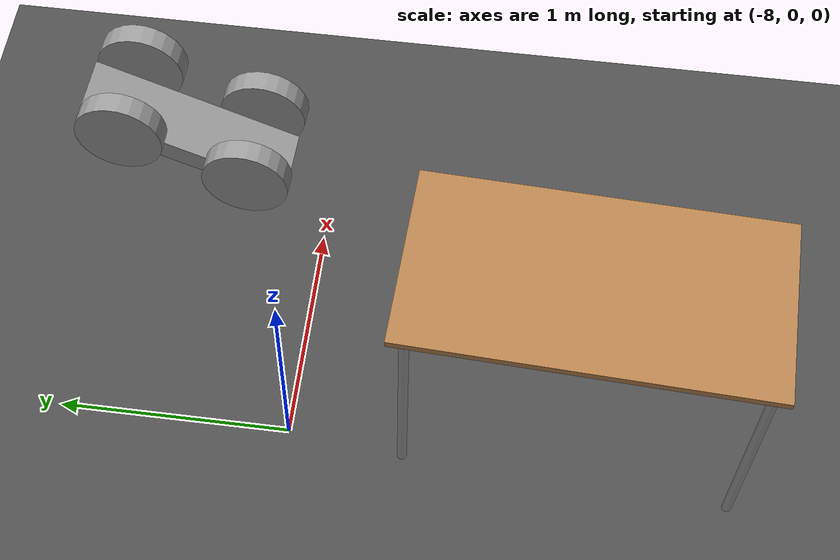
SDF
<sdf version="1.6">
 <world name="default">
  <model name="ground_plane">
   <static>1</static>
   <link name="link">
    <collision name="collision">
     <geometry><plane><normal>0 0 1</normal><size>100 100</size></plane></geometry>
     <surface>
      <contact><collide_bitmask>65535</collide_bitmask></contact>
      <friction><ode><mu>100</mu><mu2>50</mu2></ode></friction>
     </surface>
    </collision>
    <visual name="visual">
     <cast_shadows>0</cast_shadows>
     <geometry><plane><normal>0 0 1</normal><size>100 100</size></plane></geometry>
     <material>
      <script><uri>file://media/materials/scripts/gazebo.material</uri><name>Gazebo/Grey</name></script>
     </material>
    </visual>
   </link>
  </model>
  <model name="table_0">
   <static>1</static>
   <link name="link">
    <collision name="surface">
     <pose>0 0 1 0 -0 0</pose>
     <geometry><box><size>1.5 0.8 0.03</size></box></geometry>
     <surface><friction><ode><mu>0.6</mu><mu2>0.6</mu2></ode></friction></surface>
    </collision>
    <visual name="visual1">
     <pose>0 0 1 0 -0 0</pose>
     <geometry><box><size>1.5 0.8 0.03</size></box></geometry>
     <material>
      <script><uri>file://media/materials/scripts/gazebo.material</uri><name>Gazebo/Wood</name></script>
     </material>
    </visual>
    <collision name="front_left_leg">
     <pose>0.68 0.38 0.5 0 -0 0</pose>
     <geometry><cylinder><radius>0.02</radius><length>1</length></cylinder></geometry>
    </collision>
    <visual name="front_left_leg">
     <pose>0.68 0.38 0.5 0 -0 0</pose>
     <geometry><cylinder><radius>0.02</radius><length>1</length></cylinder></geometry>
     <material>
      <script><uri>file://media/materials/scripts/gazebo.material</uri><name>Gazebo/Grey</name></script>
     </material>
    </visual>
    <collision name="front_right_leg">
     <pose>0.68 -0.38 0.5 0 -0 0</pose>
     <geometry><cylinder><radius>0.02</radius><length>1</length></cylinder></geometry>
    </collision>
    <visual name="front_right_leg">
     <pose>0.68 -0.38 0.5 0 -0 0</pose>
     <geometry><cylinder><radius>0.02</radius><length>1</length></cylinder></geometry>
     <material>
      <script><uri>file://media/materials/scripts/gazebo.material</uri><name>Gazebo/Grey</name></script>
     </material>
    </visual>
    <collision name="back_right_leg">
     <pose>-0.68 -0.38 0.5 0 -0 0</pose>
     <geometry><cylinder><radius>0.02</radius><length>1</length></cylinder></geometry>
    </collision>
    <visual name="back_right_leg">
     <pose>-0.68 -0.38 0.5 0 -0 0</pose>
     <geometry><cylinder><radius>0.02</radius><length>1</length></cylinder></geometry>
     <material>
      <script><uri>file://media/materials/scripts/gazebo.material</uri><name>Gazebo/Grey</name></script>
     </material>
    </visual>
    <collision name="back_left_leg">
     <pose>-0.68 0.38 0.5 0 -0 0</pose>
     <geometry><cylinder><radius>0.02</radius><length>1</length></cylinder></geometry>
    </collision>
    <visual name="back_left_leg">
     <pose>-0.68 0.38 0.5 0 -0 0</pose>
     <geometry><cylinder><radius>0.02</radius><length>1</length></cylinder></geometry>
     <material>
      <script><uri>file://media/materials/scripts/gazebo.material</uri><name>Gazebo/Grey</name></script>
     </material>
    </visual>
   </link>
   <pose>-7.72892 -1.19279 0 0 0 -1.61831</pose>
  </model>
  <model name="asphalt_plane">
   <static>1</static>
   <link name="link">
    <collision name="collision"><geometry><box><size>20 20 0.1</size></box></geometry></collision>
    <visual name="visual">
     <cast_shadows>0</cast_shadows>
     <geometry><box><size>20 20 0.1</size></box></geometry>
     <material>
      <script>
       <uri>model://asphalt_plane/materials/scripts</uri>
       <uri>model://asphalt_plane/materials/textures</uri>
       <name>vrc/asphalt</name>
      </script>
     </material>
    </visual>
   </link>
   <pose>0.120009 -0.032107 0 0 -0 0</pose>
  </model>
  <model name="myrobot_0">
   <link name="link_0">
    <pose>1.89771 0.363402 0 0 -0 0</pose>
    <inertial>
     <mass>1</mass>
     <inertia>
      <ixx>0.166667</ixx>
      <ixy>0</ixy>
      <ixz>0</ixz>
      <iyy>0.166667</iyy>
      <iyz>0</iyz>
      <izz>0.166667</izz>
     </inertia>
     <pose>0 0 0.2 0 -0 0</pose>
    </inertial>
    <visual name="visual">
     <geometry><box><size>0.3 1 0.1</size></box></geometry>
     <material>
      <lighting>1</lighting>
      <script><uri>file://media/materials/scripts/gazebo.material</uri><name>Gazebo/Grey</name></script>
      <shader type="pixel"><normal_map>__default__</normal_map></shader>
      <ambient>0.3 0.3 0.3 1</ambient>
      <diffuse>0.7 0.7 0.7 1</diffuse>
      <specular>0.01 0.01 0.01 1</specular>
      <emissive>0 0 0 1</emissive>
     </material>
    </visual>
    <collision name="collision">
     <geometry><box><size>0.3 1 0.1</size></box></geometry>
     <surface>
      <friction>
       <ode><mu>1</mu><mu2>1</mu2><fdir1>0 0 0</fdir1><slip1>0</slip1><slip2>0</slip2></ode>
       <torsional>
        <coefficient>1</coefficient>
        <patch_radius>0</patch_radius>
        <surface_radius>0</surface_radius>
        <use_patch_radius>1</use_patch_radius>
        <ode><slip>0</slip></ode>
       </torsional>
      </friction>
      <bounce><restitution_coefficient>0</restitution_coefficient><threshold>1e+06</threshold></bounce>
      <contact>
       <collide_without_contact>0</collide_without_contact>
       <collide_without_contact_bitmask>1</collide_without_contact_bitmask>
       <collide_bitmask>1</collide_bitmask>
       <ode>
        <soft_cfm>0</soft_cfm>
        <soft_erp>0.2</soft_erp>
        <kp>1e+13</kp>
        <kd>1</kd>
        <max_vel>0.01</max_vel>
        <min_depth>0</min_depth>
       </ode>
       <bullet>
        <split_impulse>1</split_impulse>
        <split_impulse_penetration_threshold>-0.01</split_impulse_penetration_threshold>
        <soft_cfm>0</soft_cfm>
        <soft_erp>0.2</soft_erp>
        <kp>1e+13</kp>
        <kd>1</kd>
       </bullet>
      </contact>
     </surface>
    </collision>
   </link>
   <link name="link_1_clone_clone_0">
    <pose>1.69765 -0.136569 0.1 4.8e-05 1.5707 1.57075</pose>
    <inertial>
     <mass>1</mass>
     <inertia><ixx>0.145833</ixx><ixy>0</ixy><ixz>0</ixz><iyy>0.145833</iyy><iyz>0</iyz><izz>0.125</izz></inertia>
     <pose>0 0 0.2 -0 1.5707 1.5707</pose>
    </inertial>
    <visual name="visual">
     <pose>0 0 0.2 1.5707 -0 0</pose>
     <geometry><cylinder><radius>0.2</radius><length>0.1</length></cylinder></geometry>
     <material>
      <lighting>1</lighting>
      <script><uri>file://media/materials/scripts/gazebo.material</uri><name>Gazebo/Grey</name></script>
      <shader type="pixel"><normal_map>__default__</normal_map></shader>
      <ambient>0.3 0.3 0.3 1</ambient>
      <diffuse>0.7 0.7 0.7 1</diffuse>
      <specular>0.01 0.01 0.01 1</specular>
      <emissive>0 0 0 1</emissive>
     </material>
    </visual>
    <collision name="collision">
     <pose>0 0 0.2 1.5707 -0 0</pose>
     <geometry><cylinder><radius>0.2</radius><length>0.1</length></cylinder></geometry>
     <surface>
      <friction>
       <ode><mu>1</mu><mu2>1</mu2><fdir1>0 0 0</fdir1><slip1>0</slip1><slip2>0</slip2></ode>
       <torsional>
        <coefficient>1</coefficient>
        <patch_radius>0</patch_radius>
        <surface_radius>0</surface_radius>
        <use_patch_radius>1</use_patch_radius>
        <ode><slip>0</slip></ode>
       </torsional>
      </friction>
      <bounce><restitution_coefficient>0</restitution_coefficient><threshold>1e+06</threshold></bounce>
      <contact>
       <collide_without_contact>0</collide_without_contact>
       <collide_without_contact_bitmask>1</collide_without_contact_bitmask>
       <collide_bitmask>1</collide_bitmask>
       <ode>
        <soft_cfm>0</soft_cfm>
        <soft_erp>0.2</soft_erp>
        <kp>1e+13</kp>
        <kd>1</kd>
        <max_vel>0.01</max_vel>
        <min_depth>0</min_depth>
       </ode>
       <bullet>
        <split_impulse>1</split_impulse>
        <split_impulse_penetration_threshold>-0.01</split_impulse_penetration_threshold>
        <soft_cfm>0</soft_cfm>
        <soft_erp>0.2</soft_erp>
        <kp>1e+13</kp>
        <kd>1</kd>
       </bullet>
      </contact>
     </surface>
    </collision>
   </link>
   <link name="link_1_clone_clone_0_clone">
    <pose>2.09773 -0.136569 0.1 -0.000572 1.5707 1.57013</pose>
    <inertial>
     <mass>1</mass>
     <inertia><ixx>0.145833</ixx><ixy>0</ixy><ixz>0</ixz><iyy>0.145833</iyy><iyz>0</iyz><izz>0.125</izz></inertia>
     <pose>0 0 0.2 -0 1.5707 1.5707</pose>
    </inertial>
    <visual name="visual">
     <pose>0 0 0.2 1.5707 -0 0</pose>
     <geometry><cylinder><radius>0.2</radius><length>0.1</length></cylinder></geometry>
     <material>
      <lighting>1</lighting>
      <script><uri>file://media/materials/scripts/gazebo.material</uri><name>Gazebo/Grey</name></script>
      <shader type="pixel"><normal_map>__default__</normal_map></shader>
      <ambient>0.3 0.3 0.3 1</ambient>
      <diffuse>0.7 0.7 0.7 1</diffuse>
      <specular>0.01 0.01 0.01 1</specular>
      <emissive>0 0 0 1</emissive>
     </material>
    </visual>
    <collision name="collision">
     <pose>0 0 0.2 1.5707 -0 0</pose>
     <geometry><cylinder><radius>0.2</radius><length>0.1</length></cylinder></geometry>
     <surface>
      <friction>
       <ode><mu>1</mu><mu2>1</mu2><fdir1>0 0 0</fdir1><slip1>0</slip1><slip2>0</slip2></ode>
       <torsional>
        <coefficient>1</coefficient>
        <patch_radius>0</patch_radius>
        <surface_radius>0</surface_radius>
        <use_patch_radius>1</use_patch_radius>
        <ode><slip>0</slip></ode>
       </torsional>
      </friction>
      <bounce><restitution_coefficient>0</restitution_coefficient><threshold>1e+06</threshold></bounce>
      <contact>
       <collide_without_contact>0</collide_without_contact>
       <collide_without_contact_bitmask>1</collide_without_contact_bitmask>
       <collide_bitmask>1</collide_bitmask>
       <ode>
        <soft_cfm>0</soft_cfm>
        <soft_erp>0.2</soft_erp>
        <kp>1e+13</kp>
        <kd>1</kd>
        <max_vel>0.01</max_vel>
        <min_depth>0</min_depth>
       </ode>
       <bullet>
        <split_impulse>1</split_impulse>
        <split_impulse_penetration_threshold>-0.01</split_impulse_penetration_threshold>
        <soft_cfm>0</soft_cfm>
        <soft_erp>0.2</soft_erp>
        <kp>1e+13</kp>
        <kd>1</kd>
       </bullet>
      </contact>
     </surface>
    </collision>
   </link>
   <link name="link_1_clone_clone_0_clone_0">
    <pose>2.09773 0.463373 0.1 -0.000572 1.5707 1.57013</pose>
    <inertial>
     <mass>1</mass>
     <inertia><ixx>0.145833</ixx><ixy>0</ixy><ixz>0</ixz><iyy>0.145833</iyy><iyz>0</iyz><izz>0.125</izz></inertia>
     <pose>0 0 0.2 -0 1.5707 1.5707</pose>
    </inertial>
    <visual name="visual">
     <pose>0 0 0.2 1.5707 -0 0</pose>
     <geometry><cylinder><radius>0.2</radius><length>0.1</length></cylinder></geometry>
     <material>
      <lighting>1</lighting>
      <script><uri>file://media/materials/scripts/gazebo.material</uri><name>Gazebo/Grey</name></script>
      <shader type="pixel"><normal_map>__default__</normal_map></shader>
      <ambient>0.3 0.3 0.3 1</ambient>
      <diffuse>0.7 0.7 0.7 1</diffuse>
      <specular>0.01 0.01 0.01 1</specular>
      <emissive>0 0 0 1</emissive>
     </material>
    </visual>
    <collision name="collision">
     <pose>0 0 0.2 1.5707 -0 0</pose>
     <geometry><cylinder><radius>0.2</radius><length>0.1</length></cylinder></geometry>
     <surface>
      <friction>
       <ode><mu>1</mu><mu2>1</mu2><fdir1>0 0 0</fdir1><slip1>0</slip1><slip2>0</slip2></ode>
       <torsional>
        <coefficient>1</coefficient>
        <patch_radius>0</patch_radius>
        <surface_radius>0</surface_radius>
        <use_patch_radius>1</use_patch_radius>
        <ode><slip>0</slip></ode>
       </torsional>
      </friction>
      <bounce><restitution_coefficient>0</restitution_coefficient><threshold>1e+06</threshold></bounce>
      <contact>
       <collide_without_contact>0</collide_without_contact>
       <collide_without_contact_bitmask>1</collide_without_contact_bitmask>
       <collide_bitmask>1</collide_bitmask>
       <ode>
        <soft_cfm>0</soft_cfm>
        <soft_erp>0.2</soft_erp>
        <kp>1e+13</kp>
        <kd>1</kd>
        <max_vel>0.01</max_vel>
        <min_depth>0</min_depth>
       </ode>
       <bullet>
        <split_impulse>1</split_impulse>
        <split_impulse_penetration_threshold>-0.01</split_impulse_penetration_threshold>
        <soft_cfm>0</soft_cfm>
        <soft_erp>0.2</soft_erp>
        <kp>1e+13</kp>
        <kd>1</kd>
       </bullet>
      </contact>
     </surface>
    </collision>
   </link>
   <link name="link_1_clone_clone_0_clone_1">
    <pose>1.69765 0.463373 0.1 -0.000572 1.5707 1.57013</pose>
    <inertial>
     <mass>1</mass>
     <inertia><ixx>0.145833</ixx><ixy>0</ixy><ixz>0</ixz><iyy>0.145833</iyy><iyz>0</iyz><izz>0.125</izz></inertia>
     <pose>0 0 0.2 -0 1.5707 1.5707</pose>
    </inertial>
    <visual name="visual">
     <pose>0 0 0.2 1.5707 -0 0</pose>
     <geometry><cylinder><radius>0.2</radius><length>0.1</length></cylinder></geometry>
     <material>
      <lighting>1</lighting>
      <script><uri>file://media/materials/scripts/gazebo.material</uri><name>Gazebo/Grey</name></script>
      <shader type="pixel"><normal_map>__default__</normal_map></shader>
      <ambient>0.3 0.3 0.3 1</ambient>
      <diffuse>0.7 0.7 0.7 1</diffuse>
      <specular>0.01 0.01 0.01 1</specular>
      <emissive>0 0 0 1</emissive>
     </material>
    </visual>
    <collision name="collision">
     <pose>0 0 0.2 1.5707 -0 0</pose>
     <geometry><cylinder><radius>0.2</radius><length>0.1</length></cylinder></geometry>
     <surface>
      <friction>
       <ode><mu>1</mu><mu2>1</mu2><fdir1>0 0 0</fdir1><slip1>0</slip1><slip2>0</slip2></ode>
       <torsional>
        <coefficient>1</coefficient>
        <patch_radius>0</patch_radius>
        <surface_radius>0</surface_radius>
        <use_patch_radius>1</use_patch_radius>
        <ode><slip>0</slip></ode>
       </torsional>
      </friction>
      <bounce><restitution_coefficient>0</restitution_coefficient><threshold>1e+06</threshold></bounce>
      <contact>
       <collide_without_contact>0</collide_without_contact>
       <collide_without_contact_bitmask>1</collide_without_contact_bitmask>
       <collide_bitmask>1</collide_bitmask>
       <ode>
        <soft_cfm>0</soft_cfm>
        <soft_erp>0.2</soft_erp>
        <kp>1e+13</kp>
        <kd>1</kd>
        <max_vel>0.01</max_vel>
        <min_depth>0</min_depth>
       </ode>
       <bullet>
        <split_impulse>1</split_impulse>
        <split_impulse_penetration_threshold>-0.01</split_impulse_penetration_threshold>
        <soft_cfm>0</soft_cfm>
        <soft_erp>0.2</soft_erp>
        <kp>1e+13</kp>
        <kd>1</kd>
       </bullet>
      </contact>
     </surface>
    </collision>
   </link>
   <joint name="link_0_JOINT_5" type="revolute">
    <parent>link_0</parent>
    <child>link_1_clone_clone_0</child>
    <axis>
     <xyz>0 1 0</xyz>
     <use_parent_model_frame>0</use_parent_model_frame>
     <limit>
      <lower>-1.79769e+308</lower>
      <upper>1.79769e+308</upper>
      <effort>-1</effort>
      <velocity>-1</velocity>
     </limit>
     <dynamics>
      <spring_reference>0</spring_reference>
      <spring_stiffness>0</spring_stiffness>
      <damping>0</damping>
      <friction>0</friction>
     </dynamics>
    </axis>
    <physics>
     <ode><limit><cfm>0</cfm><erp>0.2</erp></limit><suspension><cfm>0</cfm><erp>0.2</erp></suspension></ode>
    </physics>
   </joint>
   <joint name="link_0_JOINT_6" type="revolute">
    <parent>link_0</parent>
    <child>link_1_clone_clone_0_clone</child>
    <axis>
     <xyz>0 1 0</xyz>
     <use_parent_model_frame>0</use_parent_model_frame>
     <limit>
      <lower>-1.79769e+308</lower>
      <upper>1.79769e+308</upper>
      <effort>-1</effort>
      <velocity>-1</velocity>
     </limit>
     <dynamics>
      <spring_reference>0</spring_reference>
      <spring_stiffness>0</spring_stiffness>
      <damping>0</damping>
      <friction>0</friction>
     </dynamics>
    </axis>
    <physics>
     <ode><limit><cfm>0</cfm><erp>0.2</erp></limit><suspension><cfm>0</cfm><erp>0.2</erp></suspension></ode>
    </physics>
   </joint>
   <joint name="link_0_JOINT_8" type="revolute">
    <parent>link_0</parent>
    <child>link_1_clone_clone_0_clone_0</child>
    <axis>
     <xyz>0 1 0</xyz>
     <use_parent_model_frame>0</use_parent_model_frame>
     <limit>
      <lower>-1.79769e+308</lower>
      <upper>1.79769e+308</upper>
      <effort>-1</effort>
      <velocity>-1</velocity>
     </limit>
     <dynamics>
      <spring_reference>0</spring_reference>
      <spring_stiffness>0</spring_stiffness>
      <damping>0</damping>
     </dynamics>
    </axis>
    <physics>
     <ode><limit><cfm>0</cfm><erp>0.2</erp></limit><suspension><cfm>0</cfm><erp>0.2</erp></suspension></ode>
    </physics>
   </joint>
   <joint name="link_0_JOINT_9" type="revolute">
    <parent>link_0</parent>
    <child>link_1_clone_clone_0_clone_1</child>
    <axis>
     <xyz>0 1 0</xyz>
     <use_parent_model_frame>0</use_parent_model_frame>
     <limit>
      <lower>-1.79769e+308</lower>
      <upper>1.79769e+308</upper>
      <effort>-1</effort>
      <velocity>-1</velocity>
     </limit>
     <dynamics>
      <spring_reference>0</spring_reference>
      <spring_stiffness>0</spring_stiffness>
      <damping>0</damping>
     </dynamics>
    </axis>
    <physics>
     <ode><limit><cfm>0</cfm><erp>0.2</erp></limit><suspension><cfm>0</cfm><erp>0.2</erp></suspension></ode>
    </physics>
   </joint>
   <static>0</static>
   <pose>-8.57624 0.411626 0.14613 0.371247 -1.5e-05 -0.039693</pose>
  </model>
 </world>
</sdf>
